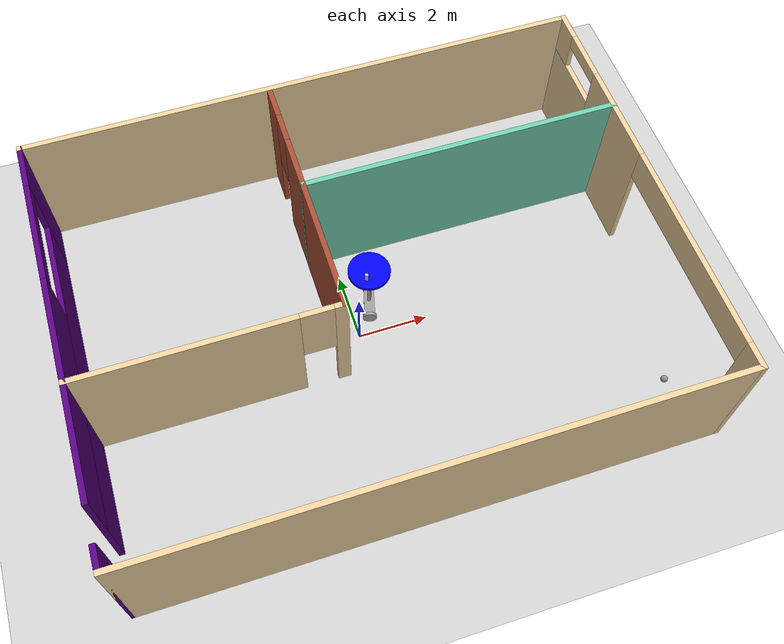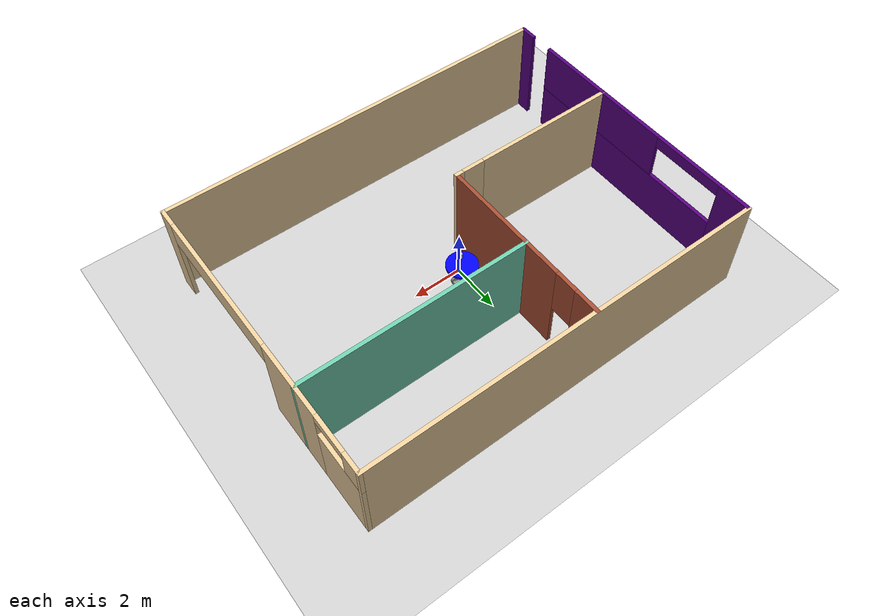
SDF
<sdf version="1.6">
 <world name="default">
  <model name="ground_plane">
   <static>1</static>
   <link name="link">
    <collision name="collision">
     <geometry><plane><normal>0 0 1</normal><size>100 100</size></plane></geometry>
     <surface><friction><ode><mu>100</mu><mu2>50</mu2></ode></friction></surface>
    </collision>
    <visual name="visual">
     <cast_shadows>0</cast_shadows>
     <geometry><plane><normal>0 0 1</normal><size>100 100</size></plane></geometry>
     <material>
      <script><uri>file://media/materials/scripts/gazebo.material</uri><name>Gazebo/Grey</name></script>
     </material>
    </visual>
   </link>
  </model>
  <model name="beer">
   <link name="link">
    <pose>0 0 0.115 0 -0 0</pose>
    <inertial>
     <mass>0.39</mass>
     <inertia><ixx>0.00058</ixx><ixy>0</ixy><ixz>0</ixz><iyy>0.00058</iyy><iyz>0</iyz><izz>0.00019</izz></inertia>
    </inertial>
    <collision name="collision">
     <geometry><cylinder><radius>0.055</radius><length>0.23</length></cylinder></geometry>
    </collision>
    <visual name="visual">
     <geometry><cylinder><radius>0.055</radius><length>0.23</length></cylinder></geometry>
     <material>
      <script>
       <uri>model://beer/materials/scripts</uri>
       <uri>model://beer/materials/textures</uri>
       <name>Beer/Diffuse</name>
      </script>
     </material>
    </visual>
   </link>
   <pose>0.436024 0.699133 1.8502 0.000389 0.002679 -0.112427</pose>
  </model>
  <model name="two_wheel_table">
   <link name="link_0">
    <inertial>
     <mass>1</mass>
     <inertia>
      <ixx>0.166667</ixx>
      <ixy>0</ixy>
      <ixz>0</ixz>
      <iyy>0.166667</iyy>
      <iyz>0</iyz>
      <izz>0.166667</izz>
     </inertia>
    </inertial>
    <visual name="visual">
     <geometry><box><size>0.3 1 0.1</size></box></geometry>
     <material>
      <lighting>1</lighting>
      <script><uri>file://media/materials/scripts/gazebo.material</uri><name>Gazebo/Grey</name></script>
      <shader type="pixel"><normal_map>__default__</normal_map></shader>
      <ambient>0.3 0.3 0.3 1</ambient>
      <diffuse>0.7 0.7 0.7 1</diffuse>
      <specular>0 0 0 1</specular>
      <emissive>0 0 0 1</emissive>
     </material>
    </visual>
    <collision name="collision">
     <geometry><box><size>0.3 1 0.1</size></box></geometry>
     <surface>
      <friction>
       <ode><mu>1</mu><mu2>1</mu2><fdir1>0 0 0</fdir1><slip1>0</slip1><slip2>0</slip2></ode>
       <torsional>
        <coefficient>1</coefficient>
        <patch_radius>0</patch_radius>
        <surface_radius>0</surface_radius>
        <use_patch_radius>1</use_patch_radius>
        <ode><slip>0</slip></ode>
       </torsional>
      </friction>
      <bounce><restitution_coefficient>0</restitution_coefficient><threshold>1e+06</threshold></bounce>
      <contact>
       <collide_without_contact>0</collide_without_contact>
       <collide_without_contact_bitmask>1</collide_without_contact_bitmask>
       <collide_bitmask>1</collide_bitmask>
       <ode>
        <soft_cfm>0</soft_cfm>
        <soft_erp>0.2</soft_erp>
        <kp>1e+13</kp>
        <kd>1</kd>
        <max_vel>0.01</max_vel>
        <min_depth>0</min_depth>
       </ode>
       <bullet>
        <split_impulse>1</split_impulse>
        <split_impulse_penetration_threshold>-0.01</split_impulse_penetration_threshold>
        <soft_cfm>0</soft_cfm>
        <soft_erp>0.2</soft_erp>
        <kp>1e+13</kp>
        <kd>1</kd>
       </bullet>
      </contact>
     </surface>
    </collision>
   </link>
   <link name="link_1">
    <pose>-0 -0.550159 -0 1.57 -0 0</pose>
    <inertial>
     <mass>1</mass>
     <inertia><ixx>0.145833</ixx><ixy>0</ixy><ixz>0</ixz><iyy>0.145833</iyy><iyz>0</iyz><izz>0.125</izz></inertia>
    </inertial>
    <visual name="visual">
     <geometry><cylinder><radius>0.2</radius><length>0.1</length></cylinder></geometry>
     <material>
      <lighting>1</lighting>
      <script><uri>file://media/materials/scripts/gazebo.material</uri><name>Gazebo/Grey</name></script>
      <shader type="pixel"><normal_map>__default__</normal_map></shader>
      <ambient>0 0 0 1</ambient>
      <diffuse>0.7 0.7 0.7 1</diffuse>
      <specular>0.01 0.01 0.01 1</specular>
      <emissive>0 0 0 1</emissive>
     </material>
    </visual>
    <collision name="collision">
     <geometry><cylinder><radius>0.2</radius><length>0.1</length></cylinder></geometry>
     <surface>
      <friction>
       <ode><mu>1</mu><mu2>1</mu2><fdir1>0 0 0</fdir1><slip1>0</slip1><slip2>0</slip2></ode>
       <torsional>
        <coefficient>1</coefficient>
        <patch_radius>0</patch_radius>
        <surface_radius>0</surface_radius>
        <use_patch_radius>1</use_patch_radius>
        <ode><slip>0</slip></ode>
       </torsional>
      </friction>
      <bounce><restitution_coefficient>0</restitution_coefficient><threshold>1e+06</threshold></bounce>
      <contact>
       <collide_without_contact>0</collide_without_contact>
       <collide_without_contact_bitmask>1</collide_without_contact_bitmask>
       <collide_bitmask>1</collide_bitmask>
       <ode>
        <soft_cfm>0</soft_cfm>
        <soft_erp>0.2</soft_erp>
        <kp>1e+13</kp>
        <kd>1</kd>
        <max_vel>0.01</max_vel>
        <min_depth>0</min_depth>
       </ode>
       <bullet>
        <split_impulse>1</split_impulse>
        <split_impulse_penetration_threshold>-0.01</split_impulse_penetration_threshold>
        <soft_cfm>0</soft_cfm>
        <soft_erp>0.2</soft_erp>
        <kp>1e+13</kp>
        <kd>1</kd>
       </bullet>
      </contact>
     </surface>
    </collision>
   </link>
   <link name="link_1_0">
    <pose>-0 -0 0.3 0 -0 0</pose>
    <inertial>
     <mass>1</mass>
     <inertia><ixx>0.145833</ixx><ixy>0</ixy><ixz>0</ixz><iyy>0.145833</iyy><iyz>0</iyz><izz>0.125</izz></inertia>
    </inertial>
    <visual name="visual">
     <pose>0 0 0.5 0 -0 0</pose>
     <geometry><cylinder><radius>0.06</radius><length>1.5</length></cylinder></geometry>
     <material>
      <lighting>1</lighting>
      <script><uri>file://media/materials/scripts/gazebo.material</uri><name>Gazebo/Grey</name></script>
      <shader type="pixel"><normal_map>__default__</normal_map></shader>
      <ambient>0.3 0.3 0.3 1</ambient>
      <diffuse>0.7 0.7 0.7 1</diffuse>
      <specular>0.01 0.01 0.01 1</specular>
      <emissive>0 0 0 1</emissive>
     </material>
    </visual>
    <collision name="collision">
     <pose>0 0 0.5 0 -0 0</pose>
     <geometry><cylinder><radius>0.06</radius><length>1.5</length></cylinder></geometry>
     <surface>
      <friction>
       <ode><mu>1</mu><mu2>1</mu2><fdir1>0 0 0</fdir1><slip1>0</slip1><slip2>0</slip2></ode>
       <torsional>
        <coefficient>1</coefficient>
        <patch_radius>0</patch_radius>
        <surface_radius>0</surface_radius>
        <use_patch_radius>1</use_patch_radius>
        <ode><slip>0</slip></ode>
       </torsional>
      </friction>
      <bounce><restitution_coefficient>0</restitution_coefficient><threshold>1e+06</threshold></bounce>
      <contact>
       <collide_without_contact>0</collide_without_contact>
       <collide_without_contact_bitmask>1</collide_without_contact_bitmask>
       <collide_bitmask>1</collide_bitmask>
       <ode>
        <soft_cfm>0</soft_cfm>
        <soft_erp>0.2</soft_erp>
        <kp>1e+13</kp>
        <kd>1</kd>
        <max_vel>0.01</max_vel>
        <min_depth>0</min_depth>
       </ode>
       <bullet>
        <split_impulse>1</split_impulse>
        <split_impulse_penetration_threshold>-0.01</split_impulse_penetration_threshold>
        <soft_cfm>0</soft_cfm>
        <soft_erp>0.2</soft_erp>
        <kp>1e+13</kp>
        <kd>1</kd>
       </bullet>
      </contact>
     </surface>
    </collision>
   </link>
   <link name="link_1_clone">
    <pose>0 0.550159 0 1.57 -0 0</pose>
    <inertial>
     <mass>1</mass>
     <inertia><ixx>0.145833</ixx><ixy>0</ixy><ixz>0</ixz><iyy>0.145833</iyy><iyz>0</iyz><izz>0.125</izz></inertia>
    </inertial>
    <visual name="visual">
     <geometry><cylinder><radius>0.2</radius><length>0.1</length></cylinder></geometry>
     <material>
      <lighting>1</lighting>
      <script><uri>file://media/materials/scripts/gazebo.material</uri><name>Gazebo/Grey</name></script>
      <shader type="pixel"><normal_map>__default__</normal_map></shader>
      <ambient>0.3 0.3 0.3 1</ambient>
      <diffuse>0 0 0 1</diffuse>
      <specular>0 0 0 1</specular>
      <emissive>0 0 0 1</emissive>
     </material>
    </visual>
    <collision name="collision">
     <geometry><cylinder><radius>0.2</radius><length>0.1</length></cylinder></geometry>
     <surface>
      <friction>
       <ode><mu>1</mu><mu2>1</mu2><fdir1>0 0 0</fdir1><slip1>0</slip1><slip2>0</slip2></ode>
       <torsional>
        <coefficient>1</coefficient>
        <patch_radius>0</patch_radius>
        <surface_radius>0</surface_radius>
        <use_patch_radius>1</use_patch_radius>
        <ode><slip>0</slip></ode>
       </torsional>
      </friction>
      <bounce><restitution_coefficient>0</restitution_coefficient><threshold>1e+06</threshold></bounce>
      <contact>
       <collide_without_contact>0</collide_without_contact>
       <collide_without_contact_bitmask>1</collide_without_contact_bitmask>
       <collide_bitmask>1</collide_bitmask>
       <ode>
        <soft_cfm>0</soft_cfm>
        <soft_erp>0.2</soft_erp>
        <kp>1e+13</kp>
        <kd>1</kd>
        <max_vel>0.01</max_vel>
        <min_depth>0</min_depth>
       </ode>
       <bullet>
        <split_impulse>1</split_impulse>
        <split_impulse_penetration_threshold>-0.01</split_impulse_penetration_threshold>
        <soft_cfm>0</soft_cfm>
        <soft_erp>0.2</soft_erp>
        <kp>1e+13</kp>
        <kd>1</kd>
       </bullet>
      </contact>
     </surface>
    </collision>
   </link>
   <link name="link_2">
    <pose>0 -0 1.6 -1e-06 0 0</pose>
    <inertial>
     <mass>1</mass>
     <inertia><ixx>0.145833</ixx><ixy>0</ixy><ixz>0</ixz><iyy>0.145833</iyy><iyz>0</iyz><izz>0.125</izz></inertia>
    </inertial>
    <kinematic>1</kinematic>
    <visual name="visual">
     <geometry><cylinder><radius>0.6</radius><length>0.1</length></cylinder></geometry>
     <material>
      <lighting>1</lighting>
      <script><uri>file://media/materials/scripts/gazebo.material</uri><name>Gazebo/Grey</name></script>
      <shader type="pixel"><normal_map>__default__</normal_map></shader>
      <ambient>0 0 1 1</ambient>
      <diffuse>0 0 1 1</diffuse>
      <specular>0 0 1 1</specular>
      <emissive>0 0 1 1</emissive>
     </material>
    </visual>
    <collision name="collision">
     <geometry><cylinder><radius>0.6</radius><length>0.1</length></cylinder></geometry>
     <surface>
      <friction>
       <ode><mu>1</mu><mu2>1</mu2><fdir1>0 0 0</fdir1><slip1>0</slip1><slip2>0</slip2></ode>
       <torsional>
        <coefficient>1</coefficient>
        <patch_radius>0</patch_radius>
        <surface_radius>0</surface_radius>
        <use_patch_radius>1</use_patch_radius>
        <ode><slip>0</slip></ode>
       </torsional>
      </friction>
      <bounce><restitution_coefficient>0</restitution_coefficient><threshold>1e+06</threshold></bounce>
      <contact>
       <collide_without_contact>0</collide_without_contact>
       <collide_without_contact_bitmask>1</collide_without_contact_bitmask>
       <collide_bitmask>1</collide_bitmask>
       <ode>
        <soft_cfm>0</soft_cfm>
        <soft_erp>0.2</soft_erp>
        <kp>1e+13</kp>
        <kd>1</kd>
        <max_vel>0.01</max_vel>
        <min_depth>0</min_depth>
       </ode>
       <bullet>
        <split_impulse>1</split_impulse>
        <split_impulse_penetration_threshold>-0.01</split_impulse_penetration_threshold>
        <soft_cfm>0</soft_cfm>
        <soft_erp>0.2</soft_erp>
        <kp>1e+13</kp>
        <kd>1</kd>
       </bullet>
      </contact>
     </surface>
    </collision>
   </link>
   <joint name="link_0_JOINT_0_0" type="fixed">
    <parent>link_0</parent>
    <child>link_1_0</child>
    <pose>0 0 0.2 0 -0 0</pose>
    <physics>
     <ode><limit><cfm>0</cfm><erp>0.2</erp></limit><suspension><cfm>0</cfm><erp>0.2</erp></suspension></ode>
    </physics>
   </joint>
   <joint name="link_0_JOINT_0" type="revolute">
    <parent>link_0</parent>
    <child>link_1</child>
    <axis>
     <xyz>1 0 0</xyz>
     <use_parent_model_frame>0</use_parent_model_frame>
     <limit>
      <lower>-1.79769e+308</lower>
      <upper>1.79769e+308</upper>
      <effort>-1</effort>
      <velocity>-1</velocity>
     </limit>
     <dynamics>
      <spring_reference>0</spring_reference>
      <spring_stiffness>0</spring_stiffness>
      <damping>0</damping>
      <friction>0</friction>
     </dynamics>
    </axis>
    <physics>
     <ode><limit><cfm>0</cfm><erp>0.2</erp></limit><suspension><cfm>0</cfm><erp>0.2</erp></suspension></ode>
    </physics>
   </joint>
   <joint name="link_0_JOINT_1" type="revolute">
    <parent>link_0</parent>
    <child>link_1_clone</child>
    <axis>
     <xyz>1 0 0</xyz>
     <use_parent_model_frame>0</use_parent_model_frame>
     <limit>
      <lower>-1.79769e+308</lower>
      <upper>1.79769e+308</upper>
      <effort>-1</effort>
      <velocity>-1</velocity>
     </limit>
     <dynamics>
      <spring_reference>0</spring_reference>
      <spring_stiffness>0</spring_stiffness>
      <damping>0</damping>
      <friction>0</friction>
     </dynamics>
    </axis>
    <physics>
     <ode><limit><cfm>0</cfm><erp>0.2</erp></limit><suspension><cfm>0</cfm><erp>0.2</erp></suspension></ode>
    </physics>
   </joint>
   <joint name="link_1_0_JOINT_1" type="revolute">
    <parent>link_1_0</parent>
    <child>link_2</child>
    <axis>
     <xyz>1 0 0</xyz>
     <use_parent_model_frame>0</use_parent_model_frame>
     <limit>
      <lower>-1.79769e+308</lower>
      <upper>1.79769e+308</upper>
      <effort>-1</effort>
      <velocity>-1</velocity>
     </limit>
     <dynamics>
      <spring_reference>0</spring_reference>
      <spring_stiffness>0</spring_stiffness>
      <damping>0</damping>
      <friction>0</friction>
     </dynamics>
    </axis>
    <physics>
     <ode><limit><cfm>0</cfm><erp>0.2</erp></limit><suspension><cfm>0</cfm><erp>0.2</erp></suspension></ode>
    </physics>
   </joint>
   <static>0</static>
   <pose>0.583478 0.945382 0.199989 -0.004051 0.002713 -0.267063</pose>
  </model>
  <model name="chaser_ball">
   <link name="link_0">
    <inertial>
     <mass>1</mass>
     <inertia><ixx>0.1</ixx><ixy>0</ixy><ixz>0</ixz><iyy>0.1</iyy><iyz>0</iyz><izz>0.1</izz></inertia>
    </inertial>
    <visual name="visual">
     <geometry><sphere><radius>0.1</radius></sphere></geometry>
     <material>
      <lighting>1</lighting>
      <script><uri>file://media/materials/scripts/gazebo.material</uri><name>Gazebo/Grey</name></script>
      <shader type="pixel"><normal_map>__default__</normal_map></shader>
      <ambient>1 1 1 1</ambient>
      <diffuse>1 1 1 1</diffuse>
      <specular>1 1 1 1</specular>
      <emissive>1 1 1 1</emissive>
     </material>
    </visual>
    <collision name="collision">
     <geometry><sphere><radius>0.1</radius></sphere></geometry>
     <surface>
      <friction>
       <ode><mu>1</mu><mu2>1</mu2><fdir1>0 0 0</fdir1><slip1>0</slip1><slip2>0</slip2></ode>
       <torsional>
        <coefficient>1</coefficient>
        <patch_radius>0</patch_radius>
        <surface_radius>0</surface_radius>
        <use_patch_radius>1</use_patch_radius>
        <ode><slip>0</slip></ode>
       </torsional>
      </friction>
      <bounce><restitution_coefficient>0</restitution_coefficient><threshold>1e+06</threshold></bounce>
      <contact>
       <collide_without_contact>0</collide_without_contact>
       <collide_without_contact_bitmask>1</collide_without_contact_bitmask>
       <collide_bitmask>1</collide_bitmask>
       <ode>
        <soft_cfm>0</soft_cfm>
        <soft_erp>0.2</soft_erp>
        <kp>1e+13</kp>
        <kd>1</kd>
        <max_vel>0.01</max_vel>
        <min_depth>0</min_depth>
       </ode>
       <bullet>
        <split_impulse>1</split_impulse>
        <split_impulse_penetration_threshold>-0.01</split_impulse_penetration_threshold>
        <soft_cfm>0</soft_cfm>
        <soft_erp>0.2</soft_erp>
        <kp>1e+13</kp>
        <kd>1</kd>
       </bullet>
      </contact>
     </surface>
    </collision>
   </link>
   <static>0</static>
   <pose>7.67587 -3.92238 0.1 -0.909107 -1.42485 -2.2985</pose>
  </model>
  <model name="Lazy_home_2">
   <pose>0.32973 0.27905 0 0 -0 0</pose>
   <link name="Wall_11">
    <collision name="Wall_11_Collision">
     <geometry><box><size>9.15 0.15 4</size></box></geometry>
     <pose>0 0 2 0 -0 0</pose>
    </collision>
    <visual name="Wall_11_Visual">
     <pose>0 0 2 0 -0 0</pose>
     <geometry><box><size>9.15 0.15 4</size></box></geometry>
     <material>
      <script><uri>file://media/materials/scripts/gazebo.material</uri><name>Gazebo/Grey</name></script>
      <ambient>0.435294 0.796078 0.67451 1</ambient>
     </material>
     <meta><layer>0</layer></meta>
    </visual>
    <pose>3.5 2.512 0 0 -0 0</pose>
   </link>
   <link name="Wall_2">
    <collision name="Wall_2_Collision">
     <geometry><box><size>16.15 0.15 4</size></box></geometry>
     <pose>0 0 2 0 -0 0</pose>
    </collision>
    <visual name="Wall_2_Visual">
     <pose>0 0 2 0 -0 0</pose>
     <geometry><box><size>16.15 0.15 4</size></box></geometry>
     <material>
      <script><uri>file://media/materials/scripts/gazebo.material</uri><name>Gazebo/Grey</name></script>
      <ambient>0.921569 0.807843 0.615686 1</ambient>
     </material>
     <meta><layer>0</layer></meta>
    </visual>
    <pose>0 -6 0 0 -0 0</pose>
   </link>
   <link name="Wall_3">
    <pose>8 0 0 0 -0 1.5708</pose>
    <visual name="Wall_3_Visual_0">
     <pose>-5.69761 0 2 0 -0 0</pose>
     <geometry><box><size>0.75478 0.15 4</size></box></geometry>
     <material>
      <script><uri>file://media/materials/scripts/gazebo.material</uri><name>Gazebo/Grey</name></script>
      <ambient>0.921569 0.807843 0.615686 1</ambient>
     </material>
     <meta><layer>0</layer></meta>
    </visual>
    <collision name="Wall_3_Collision_0">
     <geometry><box><size>0.75478 0.15 4</size></box></geometry>
     <pose>-5.69761 0 2 0 -0 0</pose>
    </collision>
    <visual name="Wall_3_Visual_1">
     <pose>2.185 0 2 0 -0 0</pose>
     <geometry><box><size>3.01044 0.15 4</size></box></geometry>
     <material>
      <script><uri>file://media/materials/scripts/gazebo.material</uri><name>Gazebo/Grey</name></script>
      <ambient>0.921569 0.807843 0.615686 1</ambient>
     </material>
     <meta><layer>0</layer></meta>
    </visual>
    <collision name="Wall_3_Collision_1">
     <geometry><box><size>3.01044 0.15 4</size></box></geometry>
     <pose>2.185 0 2 0 -0 0</pose>
    </collision>
    <visual name="Wall_3_Visual_2">
     <pose>4.88261 0 1.4 0 -0 0</pose>
     <geometry><box><size>2.38478 0.15 2.8</size></box></geometry>
     <material>
      <script><uri>file://media/materials/scripts/gazebo.material</uri><name>Gazebo/Grey</name></script>
      <ambient>0.921569 0.807843 0.615686 1</ambient>
     </material>
     <meta><layer>0</layer></meta>
    </visual>
    <collision name="Wall_3_Collision_2">
     <geometry><box><size>2.38478 0.15 2.8</size></box></geometry>
     <pose>4.88261 0 1.4 0 -0 0</pose>
    </collision>
    <visual name="Wall_3_Visual_3">
     <pose>5.63261 0 3.4 0 -0 0</pose>
     <geometry><box><size>0.88478 0.15 1.2</size></box></geometry>
     <material>
      <script><uri>file://media/materials/scripts/gazebo.material</uri><name>Gazebo/Grey</name></script>
      <ambient>0.921569 0.807843 0.615686 1</ambient>
     </material>
     <meta><layer>0</layer></meta>
    </visual>
    <collision name="Wall_3_Collision_3">
     <geometry><box><size>0.88478 0.15 1.2</size></box></geometry>
     <pose>5.63261 0 3.4 0 -0 0</pose>
    </collision>
    <visual name="Wall_3_Visual_4">
     <pose>-2.32022 0 3.5 0 -0 0</pose>
     <geometry><box><size>6 0.15 1</size></box></geometry>
     <material>
      <script><uri>file://media/materials/scripts/gazebo.material</uri><name>Gazebo/Grey</name></script>
      <ambient>0.921569 0.807843 0.615686 1</ambient>
     </material>
     <meta><layer>0</layer></meta>
    </visual>
    <collision name="Wall_3_Collision_4">
     <geometry><box><size>6 0.15 1</size></box></geometry>
     <pose>-2.32022 0 3.5 0 -0 0</pose>
    </collision>
    <visual name="Wall_3_Visual_5">
     <pose>4.44022 0 3.8 0 -0 0</pose>
     <geometry><box><size>1.5 0.15 0.4</size></box></geometry>
     <material>
      <script><uri>file://media/materials/scripts/gazebo.material</uri><name>Gazebo/Grey</name></script>
      <ambient>0.921569 0.807843 0.615686 1</ambient>
     </material>
     <meta><layer>0</layer></meta>
    </visual>
    <collision name="Wall_3_Collision_5">
     <geometry><box><size>1.5 0.15 0.4</size></box></geometry>
     <pose>4.44022 0 3.8 0 -0 0</pose>
    </collision>
   </link>
   <link name="Wall_4">
    <collision name="Wall_4_Collision">
     <geometry><box><size>16.15 0.15 4</size></box></geometry>
     <pose>0 0 2 0 -0 0</pose>
    </collision>
    <visual name="Wall_4_Visual">
     <pose>0 0 2 0 -0 0</pose>
     <geometry><box><size>16.15 0.15 4</size></box></geometry>
     <material>
      <script><uri>file://media/materials/scripts/gazebo.material</uri><name>Gazebo/Grey</name></script>
      <ambient>0.921569 0.807843 0.615686 1</ambient>
     </material>
     <meta><layer>0</layer></meta>
    </visual>
    <pose>0 6 0 0 -0 3.14159</pose>
   </link>
   <link name="Wall_5">
    <pose>-8 0 0 0 0 -1.5708</pose>
    <visual name="Wall_5_Visual_0">
     <pose>-5.38051 0 2 0 -0 0</pose>
     <geometry><box><size>1.38898 0.15 4</size></box></geometry>
     <material>
      <script><uri>file://media/materials/scripts/gazebo.material</uri><name>Gazebo/Grey</name></script>
      <ambient>0.333333 0 0.498039 1</ambient>
     </material>
     <meta><layer>0</layer></meta>
    </visual>
    <collision name="Wall_5_Collision_0">
     <geometry><box><size>1.38898 0.15 4</size></box></geometry>
     <pose>-5.38051 0 2 0 -0 0</pose>
    </collision>
    <visual name="Wall_5_Visual_1">
     <pose>5.7074 0 2 0 -0 0</pose>
     <geometry><box><size>0.7352 0.15 4</size></box></geometry>
     <material>
      <script><uri>file://media/materials/scripts/gazebo.material</uri><name>Gazebo/Grey</name></script>
      <ambient>0.333333 0 0.498039 1</ambient>
     </material>
     <meta><layer>0</layer></meta>
    </visual>
    <collision name="Wall_5_Collision_1">
     <geometry><box><size>0.7352 0.15 4</size></box></geometry>
     <pose>5.7074 0 2 0 -0 0</pose>
    </collision>
    <visual name="Wall_5_Visual_2">
     <pose>-0.123111 0 1 0 -0 0</pose>
     <geometry><box><size>9.12582 0.15 2</size></box></geometry>
     <material>
      <script><uri>file://media/materials/scripts/gazebo.material</uri><name>Gazebo/Grey</name></script>
      <ambient>0.333333 0 0.498039 1</ambient>
     </material>
     <meta><layer>0</layer></meta>
    </visual>
    <collision name="Wall_5_Collision_2">
     <geometry><box><size>9.12582 0.15 2</size></box></geometry>
     <pose>-0.123111 0 1 0 -0 0</pose>
    </collision>
    <visual name="Wall_5_Visual_3">
     <pose>1.37689 0 3 0 -0 0</pose>
     <geometry><box><size>6.12582 0.15 2</size></box></geometry>
     <material>
      <script><uri>file://media/materials/scripts/gazebo.material</uri><name>Gazebo/Grey</name></script>
      <ambient>0.333333 0 0.498039 1</ambient>
     </material>
     <meta><layer>0</layer></meta>
    </visual>
    <collision name="Wall_5_Collision_3">
     <geometry><box><size>6.12582 0.15 2</size></box></geometry>
     <pose>1.37689 0 3 0 -0 0</pose>
    </collision>
    <visual name="Wall_5_Visual_4">
     <pose>-3.18602 0 3.75 0 -0 0</pose>
     <geometry><box><size>3 0.15 0.5</size></box></geometry>
     <material>
      <script><uri>file://media/materials/scripts/gazebo.material</uri><name>Gazebo/Grey</name></script>
      <ambient>0.333333 0 0.498039 1</ambient>
     </material>
     <meta><layer>0</layer></meta>
    </visual>
    <collision name="Wall_5_Collision_4">
     <geometry><box><size>3 0.15 0.5</size></box></geometry>
     <pose>-3.18602 0 3.75 0 -0 0</pose>
    </collision>
   </link>
   <link name="Wall_8">
    <pose>-1 2.35 0 0 0 -1.5708</pose>
    <visual name="Wall_8_Visual_0">
     <pose>-3.18333 0 2 0 -0 0</pose>
     <geometry><box><size>1.08334 0.15 4</size></box></geometry>
     <material>
      <script><uri>file://media/materials/scripts/gazebo.material</uri><name>Gazebo/Bricks</name></script>
      <ambient>1 1 1 1</ambient>
     </material>
     <meta><layer>0</layer></meta>
    </visual>
    <collision name="Wall_8_Collision_0">
     <geometry><box><size>1.08334 0.15 4</size></box></geometry>
     <pose>-3.18333 0 2 0 -0 0</pose>
    </collision>
    <visual name="Wall_8_Visual_1">
     <pose>0.991671 0 2 0 -0 0</pose>
     <geometry><box><size>5.46666 0.15 4</size></box></geometry>
     <material>
      <script><uri>file://media/materials/scripts/gazebo.material</uri><name>Gazebo/Bricks</name></script>
      <ambient>1 1 1 1</ambient>
     </material>
     <meta><layer>0</layer></meta>
    </visual>
    <collision name="Wall_8_Collision_1">
     <geometry><box><size>5.46666 0.15 4</size></box></geometry>
     <pose>0.991671 0 2 0 -0 0</pose>
    </collision>
    <visual name="Wall_8_Visual_2">
     <pose>-2.19166 0 3 0 -0 0</pose>
     <geometry><box><size>0.9 0.15 2</size></box></geometry>
     <material>
      <script><uri>file://media/materials/scripts/gazebo.material</uri><name>Gazebo/Bricks</name></script>
      <ambient>1 1 1 1</ambient>
     </material>
     <meta><layer>0</layer></meta>
    </visual>
    <collision name="Wall_8_Collision_2">
     <geometry><box><size>0.9 0.15 2</size></box></geometry>
     <pose>-2.19166 0 3 0 -0 0</pose>
    </collision>
   </link>
   <link name="Wall_9">
    <pose>-4.5 -1.3 0 0 -0 3.14159</pose>
    <visual name="Wall_9_Visual_0">
     <pose>-3.39622 0 2 0 -0 0</pose>
     <geometry><box><size>0.357555 0.15 4</size></box></geometry>
     <material>
      <script><uri>file://media/materials/scripts/gazebo.material</uri><name>Gazebo/Grey</name></script>
      <ambient>0.921569 0.807843 0.615686 1</ambient>
     </material>
     <meta><layer>0</layer></meta>
    </visual>
    <collision name="Wall_9_Collision_0">
     <geometry><box><size>0.357555 0.15 4</size></box></geometry>
     <pose>-3.39622 0 2 0 -0 0</pose>
    </collision>
    <visual name="Wall_9_Visual_1">
     <pose>0.628778 0 2 0 -0 0</pose>
     <geometry><box><size>5.89245 0.15 4</size></box></geometry>
     <material>
      <script><uri>file://media/materials/scripts/gazebo.material</uri><name>Gazebo/Grey</name></script>
      <ambient>0.921569 0.807843 0.615686 1</ambient>
     </material>
     <meta><layer>0</layer></meta>
    </visual>
    <collision name="Wall_9_Collision_1">
     <geometry><box><size>5.89245 0.15 4</size></box></geometry>
     <pose>0.628778 0 2 0 -0 0</pose>
    </collision>
    <visual name="Wall_9_Visual_2">
     <pose>-2.76744 0 3 0 -0 0</pose>
     <geometry><box><size>0.9 0.15 2</size></box></geometry>
     <material>
      <script><uri>file://media/materials/scripts/gazebo.material</uri><name>Gazebo/Grey</name></script>
      <ambient>0.921569 0.807843 0.615686 1</ambient>
     </material>
     <meta><layer>0</layer></meta>
    </visual>
    <collision name="Wall_9_Collision_2">
     <geometry><box><size>0.9 0.15 2</size></box></geometry>
     <pose>-2.76744 0 3 0 -0 0</pose>
    </collision>
   </link>
   <static>1</static>
  </model>
 </world>
</sdf>
